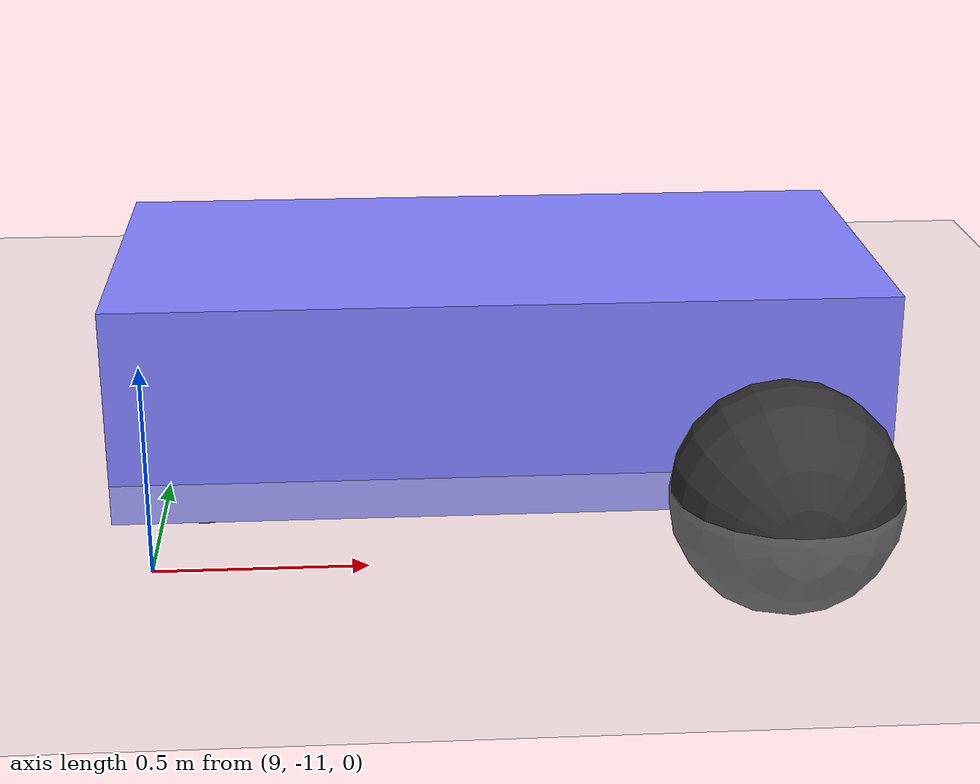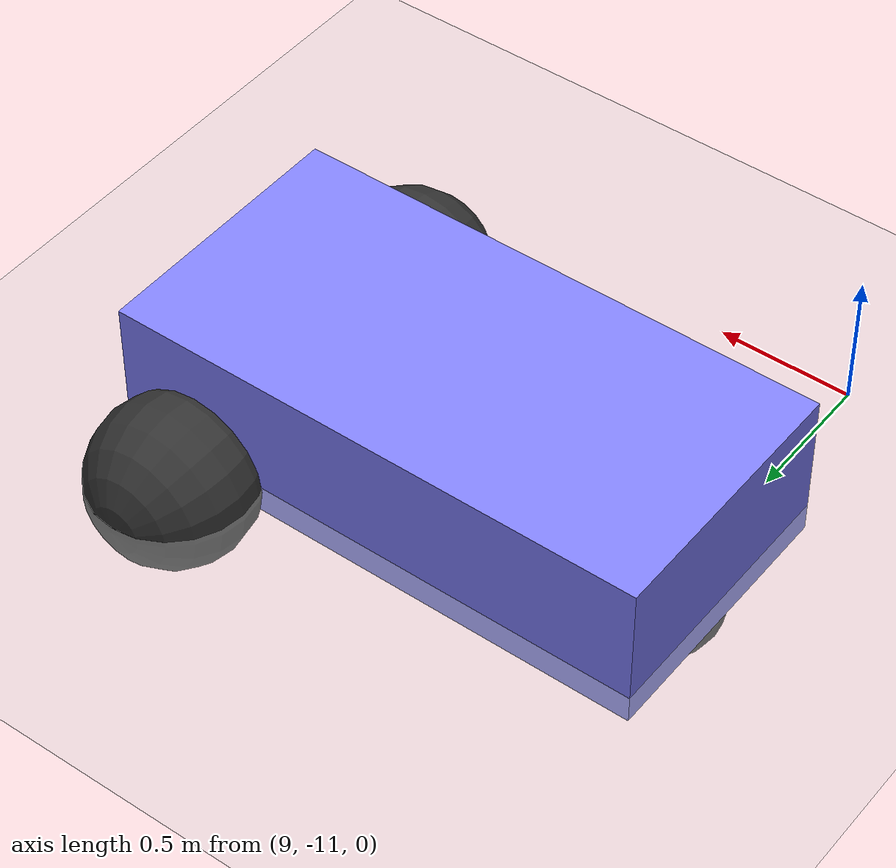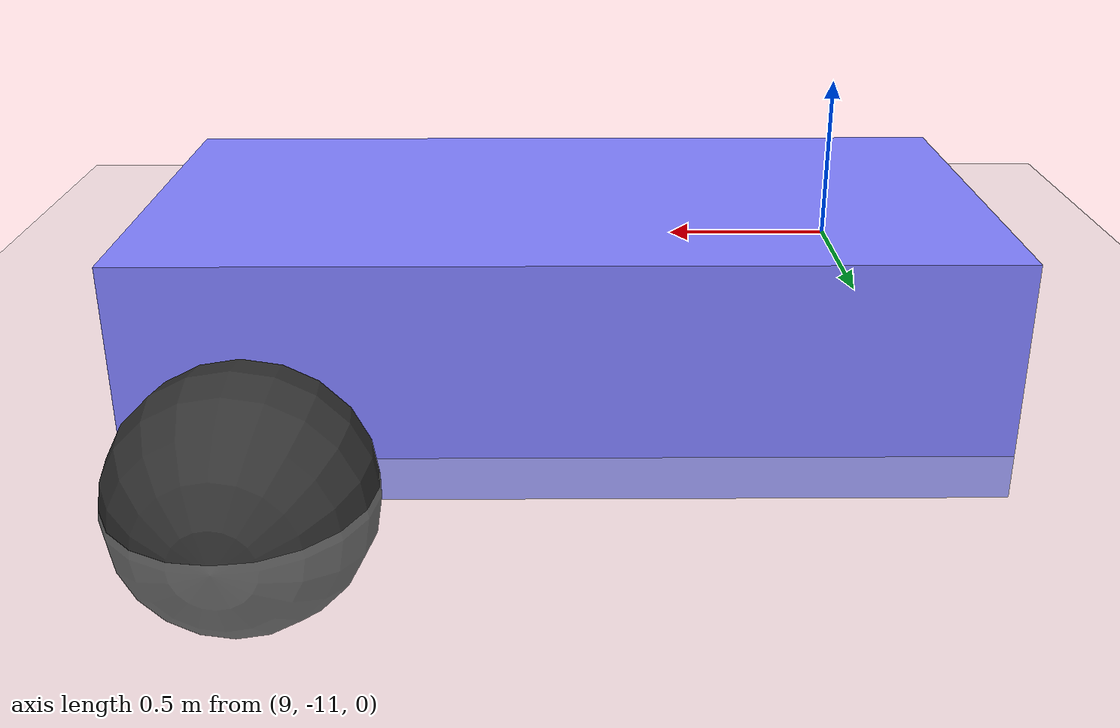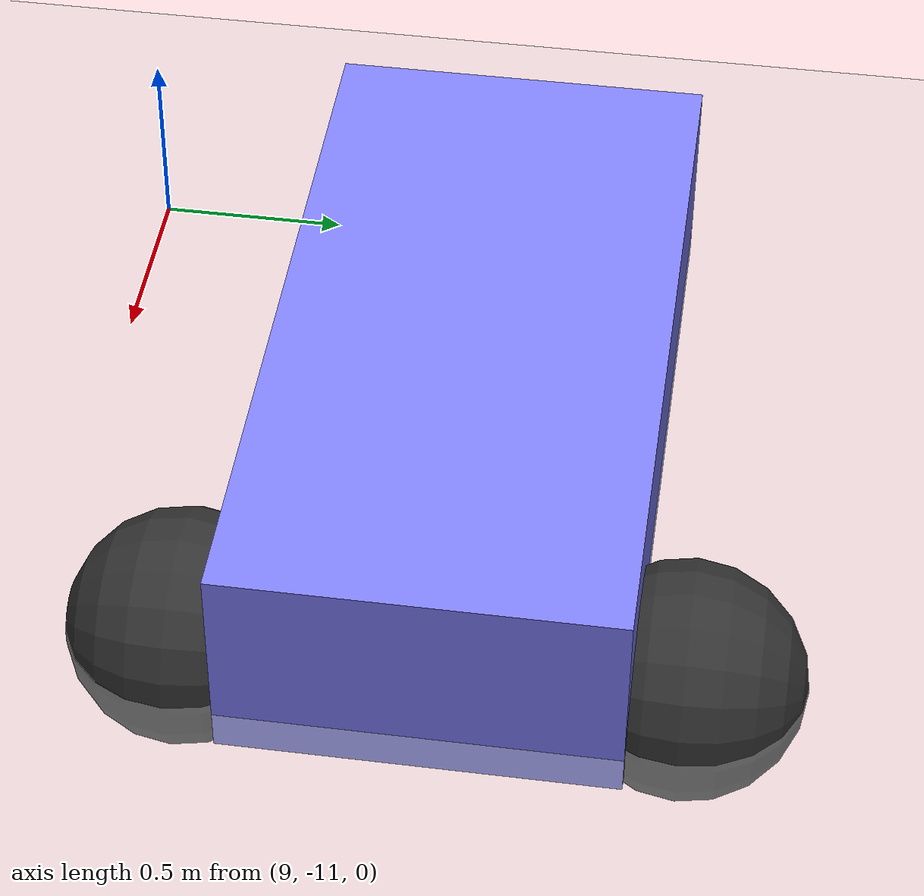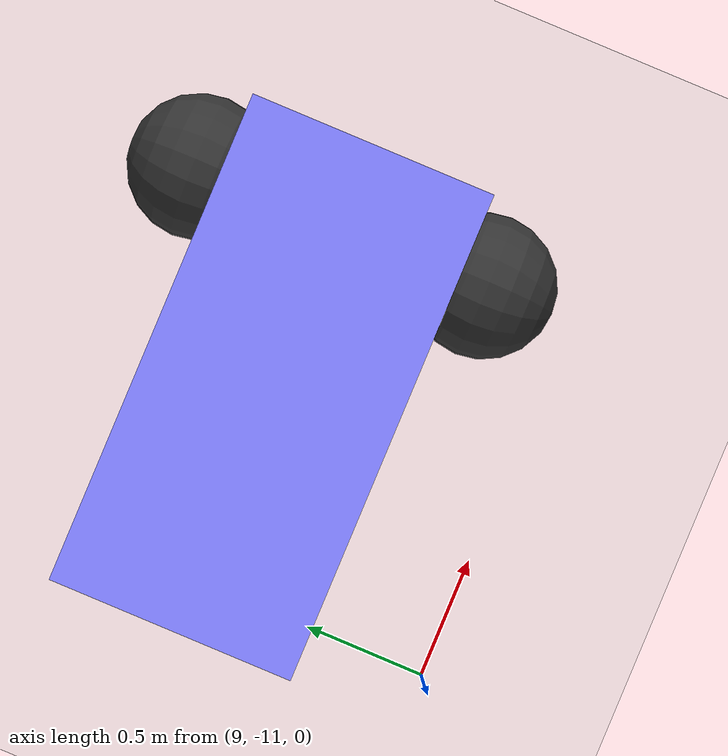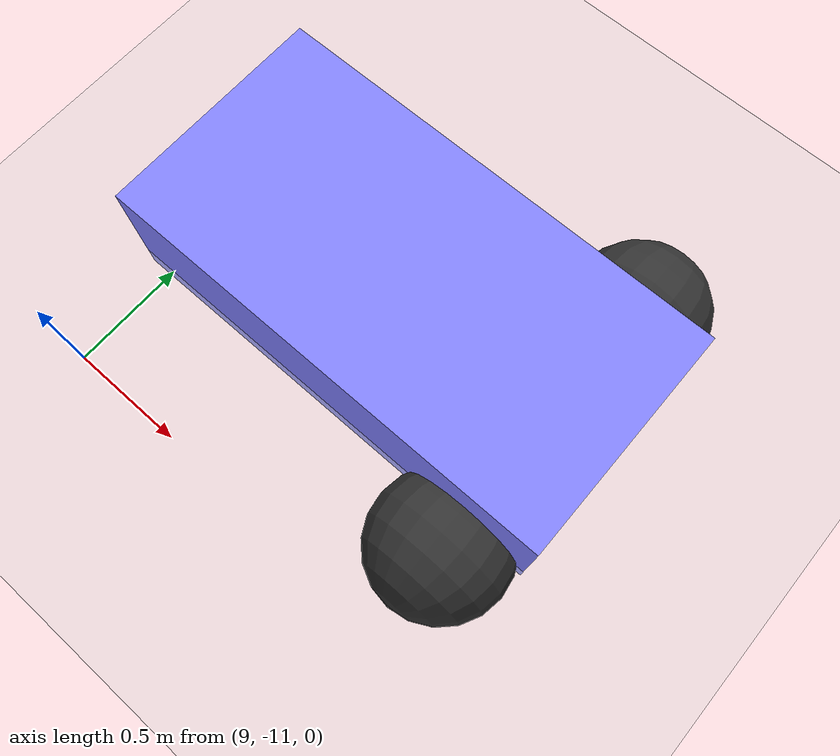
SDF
<?xml version="1.0" ?>
<sdf version="1.6">
  <world name="diff_drive">

    <physics name="1ms" type="ode">
      <max_step_size>0.001</max_step_size>
      <real_time_factor>0</real_time_factor>
    </physics>
    <plugin
      filename="gz-sim-physics-system"
      name="gz::sim::systems::Physics">
    </plugin>

    <light type="directional" name="sun">
      <cast_shadows>true</cast_shadows>
      <pose>0 0 10 0 0 0</pose>
      <diffuse>1 1 1 1</diffuse>
      <specular>0.5 0.5 0.5 1</specular>
      <attenuation>
        <range>1000</range>
        <constant>0.9</constant>
        <linear>0.01</linear>
        <quadratic>0.001</quadratic>
      </attenuation>
      <direction>-0.5 0.1 -0.9</direction>
    </light>

    <model name="ground_plane">
      <static>true</static>
      <link name="link">
        <collision name="collision">
          <geometry>
            <plane>
              <normal>0 0 1</normal>
            </plane>
          </geometry>
        </collision>
        <visual name="visual">
          <geometry>
            <plane>
              <normal>0 0 1</normal>
              <size>100 100</size>
            </plane>
          </geometry>
          <material>
            <ambient>0.8 0.8 0.8 1</ambient>
            <diffuse>0.8 0.8 0.8 1</diffuse>
            <specular>0.8 0.8 0.8 1</specular>
          </material>
        </visual>
      </link>
    </model>

    <model name='vehicle'>
      <pose>10 -10 0 0 0 0</pose>

      <link name='chassis'>
        <pose>-0.151427 -0 0.175 0 -0 0</pose>
        <inertial>
          <mass>1.14395</mass>
          <inertia>
            <ixx>0.126164</ixx>
            <ixy>0</ixy>
            <ixz>0</ixz>
            <iyy>0.416519</iyy>
            <iyz>0</iyz>
            <izz>0.481014</izz>
          </inertia>
        </inertial>
        <visual name='visual'>
          <geometry>
            <box>
              <size>2.01142 1 0.568726</size>
            </box>
          </geometry>
          <material>
            <ambient>0.5 0.5 1.0 1</ambient>
            <diffuse>0.5 0.5 1.0 1</diffuse>
            <specular>0.0 0.0 1.0 1</specular>
          </material>
        </visual>
        <collision name='collision'>
          <geometry>
            <box>
              <size>2.01142 1 0.568726</size>
            </box>
          </geometry>
        </collision>
      </link>

      <link name='left_wheel'>
        <pose>0.554283 0.625029 -0.025 -1.5707 0 0</pose>
        <inertial>
          <mass>2</mass>
          <inertia>
            <ixx>0.145833</ixx>
            <ixy>0</ixy>
            <ixz>0</ixz>
            <iyy>0.145833</iyy>
            <iyz>0</iyz>
            <izz>0.125</izz>
          </inertia>
        </inertial>
        <visual name='visual'>
          <geometry>
            <sphere>
              <radius>0.3</radius>
            </sphere>
          </geometry>
          <material>
            <ambient>0.2 0.2 0.2 1</ambient>
            <diffuse>0.2 0.2 0.2 1</diffuse>
            <specular>0.2 0.2 0.2 1</specular>
          </material>
        </visual>
        <collision name='collision'>
          <geometry>
            <sphere>
              <radius>0.3</radius>
            </sphere>
          </geometry>
        </collision>
      </link>

      <link name='right_wheel'>
        <pose>0.554282 -0.625029 -0.025 -1.5707 0 0</pose>
        <inertial>
          <mass>2</mass>
          <inertia>
            <ixx>0.145833</ixx>
            <ixy>0</ixy>
            <ixz>0</ixz>
            <iyy>0.145833</iyy>
            <iyz>0</iyz>
            <izz>0.125</izz>
          </inertia>
        </inertial>
        <visual name='visual'>
          <geometry>
            <sphere>
              <radius>0.3</radius>
            </sphere>
          </geometry>
          <material>
            <ambient>0.2 0.2 0.2 1</ambient>
            <diffuse>0.2 0.2 0.2 1</diffuse>
            <specular>0.2 0.2 0.2 1</specular>
          </material>
        </visual>
        <collision name='collision'>
          <geometry>
            <sphere>
              <radius>0.3</radius>
            </sphere>
          </geometry>
        </collision>
      </link>

      <link name='caster'>
        <pose>-0.957138 -0 -0.125 0 -0 0</pose>
        <inertial>
          <mass>1</mass>
          <inertia>
            <ixx>0.1</ixx>
            <ixy>0</ixy>
            <ixz>0</ixz>
            <iyy>0.1</iyy>
            <iyz>0</iyz>
            <izz>0.1</izz>
          </inertia>
        </inertial>
        <visual name='visual'>
          <geometry>
            <sphere>
              <radius>0.2</radius>
            </sphere>
          </geometry>
          <material>
            <ambient>0.2 0.2 0.2 1</ambient>
            <diffuse>0.2 0.2 0.2 1</diffuse>
            <specular>0.2 0.2 0.2 1</specular>
          </material>
        </visual>
        <collision name='collision'>
          <geometry>
            <sphere>
              <radius>0.2</radius>
            </sphere>
          </geometry>
        </collision>
      </link>

      <joint name='left_wheel_joint' type='revolute'>
        <parent>chassis</parent>
        <child>left_wheel</child>
        <axis>
          <xyz>0 0 1</xyz>
          <limit>
            <lower>-1.79769e+308</lower>
            <upper>1.79769e+308</upper>
          </limit>
        </axis>
      </joint>

      <joint name='right_wheel_joint' type='revolute'>
        <parent>chassis</parent>
        <child>right_wheel</child>
        <axis>
          <xyz>0 0 1</xyz>
          <limit>
            <lower>-1.79769e+308</lower>
            <upper>1.79769e+308</upper>
          </limit>
        </axis>
      </joint>

      <joint name='caster_wheel' type='ball'>
        <parent>chassis</parent>
        <child>caster</child>
      </joint>

      <plugin
        filename="gz-sim-odometry-publisher-system"
        name="gz::sim::systems::OdometryPublisher">
      <xyz_offset>1 -1 0</xyz_offset>
      <rpy_offset>1.5708 0 0</rpy_offset>
      </plugin>
    </model>

  </world>
</sdf>
